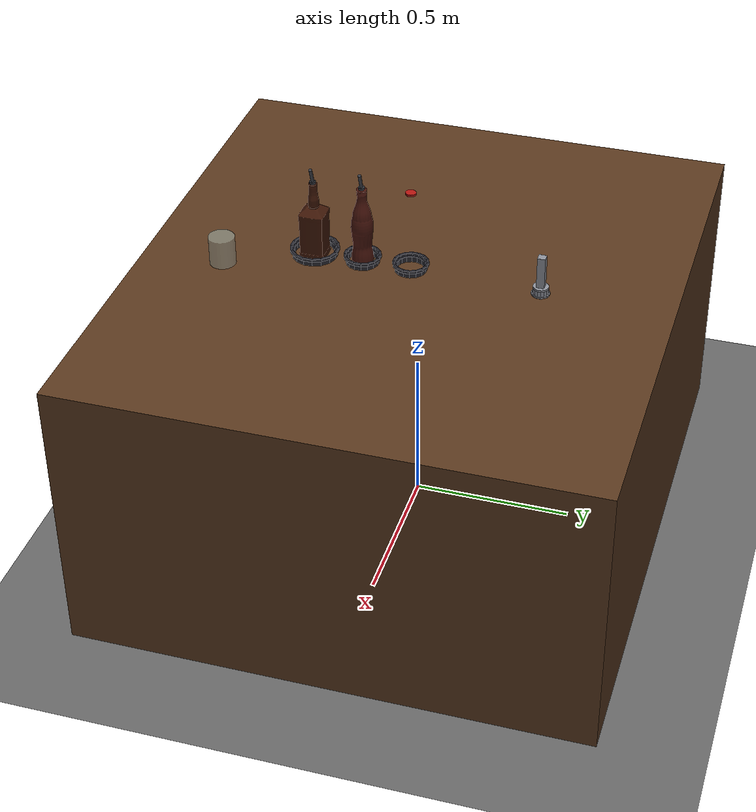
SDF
<sdf version="1.9">
 <world name="bar_world">
  <physics name="1ms" type="ignored">
   <max_step_size>0.001</max_step_size>
   <real_time_factor>1.0</real_time_factor>
   <dart><collision_detector>bullet</collision_detector></dart>
  </physics>
  <plugin filename="gz-sim-physics-system" name="gz::sim::systems::Physics"/>
  <plugin filename="gz-sim-user-commands-system" name="gz::sim::systems::UserCommands"/>
  <plugin filename="gz-sim-scene-broadcaster-system" name="gz::sim::systems::SceneBroadcaster"/>
  <plugin filename="gz-sim-sensors-system" name="gz::sim::systems::Sensors">
   <render_engine>ogre2</render_engine>
  </plugin>
  <plugin filename="gz-sim-contact-system" name="gz::sim::systems::Contact"/>
  <light type="directional" name="sun">
   <pose>0 0 10 0 0 0</pose>
   <diffuse>0.8 0.8 0.8 1</diffuse>
   <specular>0.2 0.2 0.2 1</specular>
   <attenuation>
    <range>1000</range>
    <constant>0.9</constant>
    <linear>0.01</linear>
    <quadratic>0.001</quadratic>
   </attenuation>
   <direction>-0.5 0.1 -0.9</direction>
  </light>
  <model name="ground_plane">
   <static>true</static>
   <link name="link">
    <collision name="collision">
     <geometry><plane><normal>0 0 1</normal><size>100 100</size></plane></geometry>
    </collision>
    <visual name="visual">
     <geometry><plane><normal>0 0 1</normal><size>100 100</size></plane></geometry>
     <material><ambient>0.3 0.3 0.3 1</ambient><diffuse>0.4 0.4 0.4 1</diffuse></material>
    </visual>
   </link>
  </model>
  <include><uri>model://bar_counter</uri><name>bar_counter</name><pose>0.08 0 0.9 0 0 0</pose></include>
  <include>
   <uri>model://jack_daniels_bottle</uri>
   <name>jack_daniels_bottle</name>
   <plugin filename="gz-sim-label-system" name="gz::sim::systems::Label"><label>1</label></plugin>
   <pose>0.08 -0.30 0.9 0 0 0</pose>
  </include>
  <include>
   <uri>model://cola_bottle</uri>
   <name>cola_bottle</name>
   <plugin filename="gz-sim-label-system" name="gz::sim::systems::Label"><label>2</label></plugin>
   <pose>0.08 -0.15 0.9 0 0 0</pose>
  </include>
  <include><uri>model://whiskey_stand</uri><name>whiskey_stand</name><pose>0.08 -0.30 0.9 0 0 0</pose></include>
  <include><uri>model://cola_stand</uri><name>cola_stand</name><pose>0.08 -0.15 0.9 0 0 0</pose></include>
  <include><uri>model://beer_stand</uri><name>beer_stand</name><pose>0.08 0.0 0.9 0 0 0</pose></include>
  <include><uri>model://beer_cap</uri><name>beer_cap</name><pose>0.08 0.0 1.1581 0 0 0</pose></include>
  <include>
   <uri>model://serving_glass</uri>
   <name>serving_glass</name>
   <plugin filename="gz-sim-label-system" name="gz::sim::systems::Label"><label>10</label></plugin>
   <pose>0.20 -0.55 0.9 0 0 0</pose>
  </include>
  <include>
   <uri>model://opener_holster</uri>
   <name>opener_holster</name>
   <pose>0.10 0.40 0.9 0 0 0</pose>
  </include>
  <include><uri>model://bottle_opener</uri><name>bottle_opener</name><pose>0.10 0.40 0.9 0 0 0</pose></include>
  <model name="oak_d_stand">
   <static>true</static>
   <pose>0.75 0 1.35 0 0.493051 3.141593</pose>
   <link name="link">
    <sensor name="stand_depth" type="depth_camera">
     <always_on>true</always_on>
     <update_rate>15</update_rate>
     <topic>/bartender/stand_camera/depth</topic>
     <ignition_frame_id>stand_camera_optical_frame</ignition_frame_id>
     <camera>
      <camera_info_topic>/bartender/stand_camera/camera_info</camera_info_topic>
      <horizontal_fov>1.2566</horizontal_fov>
      <image><width>640</width><height>400</height><format>R_FLOAT32</format></image>
      <clip><near>0.2</near><far>5.0</far></clip>
      <noise><type>gaussian</type><mean>0.0</mean><stddev>0.004</stddev></noise>
     </camera>
    </sensor>
    <sensor name="stand_rgb" type="camera">
     <always_on>true</always_on>
     <update_rate>15</update_rate>
     <topic>/bartender/stand_camera/rgb</topic>
     <ignition_frame_id>stand_camera_optical_frame</ignition_frame_id>
     <camera>
      <horizontal_fov>1.2566</horizontal_fov>
      <image><width>640</width><height>400</height><format>R8G8B8</format></image>
      <clip><near>0.2</near><far>5.0</far></clip>
     </camera>
    </sensor>
    <sensor name="bartender_stand_camera_segmentation" type="segmentation">
     <always_on>true</always_on>
     <update_rate>15</update_rate>
     <topic>/bartender/stand_camera/segmentation</topic>
     <camera>
      <segmentation_type>semantic</segmentation_type>
      <horizontal_fov>1.2566</horizontal_fov>
      <image><width>640</width><height>400</height></image>
      <clip><near>0.2</near><far>5.0</far></clip>
     </camera>
    </sensor>
   </link>
  </model>
  <model name="overhead_camera">
   <static>true</static>
   <pose>-0.05 -0.30 2.0 0 1.5708 0</pose>
   <link name="link">
    <sensor name="overhead_rgb" type="camera">
     <always_on>true</always_on>
     <update_rate>15</update_rate>
     <topic>/bartender/overhead_camera/image_raw</topic>
     <camera>
      <horizontal_fov>1.2566</horizontal_fov>
      <image><width>320</width><height>240</height><format>R8G8B8</format></image>
      <clip><near>0.2</near><far>3.0</far></clip>
     </camera>
    </sensor>
    <sensor name="bartender_overhead_camera_segmentation" type="segmentation">
     <always_on>true</always_on>
     <update_rate>15</update_rate>
     <topic>/bartender/overhead_camera/segmentation</topic>
     <camera>
      <segmentation_type>semantic</segmentation_type>
      <horizontal_fov>1.2566</horizontal_fov>
      <image><width>320</width><height>240</height></image>
      <clip><near>0.2</near><far>3.0</far></clip>
     </camera>
    </sensor>
   </link>
  </model>
 </world>
</sdf>

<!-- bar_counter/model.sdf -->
<sdf version="1.9">
  <model name="bar_counter">
    <static>true</static>
    <link name="counter_link">
      <visual name="counter_visual">
        <pose>0 0 -0.45 0 0 0</pose>
        <geometry>
          <box>
            <size>1.76 1.6 0.9</size>
          </box>
        </geometry>
        <material>
          <ambient>0.25 0.15 0.08 1</ambient>
          <diffuse>0.35 0.22 0.12 1</diffuse>
          <specular>0.2 0.2 0.2 1</specular>
        </material>
      </visual>

      <collision name="counter_collision">
        <pose>0 0 -0.45 0 0 0</pose>
        <geometry>
          <box>
            <size>1.76 1.6 0.9</size>
          </box>
        </geometry>
        <surface>
          <friction>
            <ode>
              <mu>0.8</mu>
              <mu2>0.8</mu2>
            </ode>
          </friction>
        </surface>
      </collision>
    </link>
  </model>
</sdf>

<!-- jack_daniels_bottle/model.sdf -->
<sdf version="1.9">
  <model name="jack_daniels_bottle">
    <!-- Link origin sits at the center of the bottle's base, so placing the
         model's pose z at table height puts the bottle exactly on the surface. -->
    <link name="bottle_link">
      <inertial>
        <pose>0 0 0.1225 0 0 0</pose>
        <mass>1.35</mass>
        <inertia>
          <ixx>0.007256</ixx>
          <iyy>0.007256</iyy>
          <izz>0.001006</izz>
          <ixy>0</ixy>
          <ixz>0</ixz>
          <iyz>0</iyz>
        </inertia>
      </inertial>

      <visual name="bottle_visual">
        <!-- source mesh is Y-up (Blender OBJ export); rotate +90 deg about X
             so the bottle's height axis becomes Z-up as SDF expects. -->
        <pose>0 0 0 1.570796 0 0</pose>
        <geometry>
          <mesh>
            <uri>meshes/bottle.obj</uri>
          </mesh>
        </geometry>
        <material>
          <ambient>0.05 0.02 0.01 1</ambient>
          <diffuse>0.25 0.09 0.03 1</diffuse>
          <specular>0.4 0.4 0.4 1</specular>
          <emissive>0 0 0 1</emissive>
        </material>
      </visual>

      <collision name="bottle_body_collision">
        <pose>0 0 0.0750 0 0 0</pose>
        <geometry>
          <box>
            <size>0.0772 0.0772 0.150</size>
          </box>
        </geometry>
        <surface>
          <friction>
            <ode>
              <mu>0.9</mu>
              <mu2>0.9</mu2>
            </ode>
          </friction>
        </surface>
      </collision>

      <collision name="bottle_shoulder_collision">
        <pose>0 0 0.1625 0 0 0</pose>
        <geometry>
          <cylinder>
            <radius>0.0250</radius>
            <length>0.025</length>
          </cylinder>
        </geometry>
        <surface>
          <friction>
            <ode>
              <mu>0.9</mu>
              <mu2>0.9</mu2>
            </ode>
          </friction>
        </surface>
      </collision>

      <collision name="bottle_neck_collision">
        <pose>0 0 0.2100 0 0 0</pose>
        <geometry>
          <cylinder>
            <radius>0.0165</radius>
            <length>0.070</length>
          </cylinder>
        </geometry>
        <surface>
          <friction>
            <ode>
              <mu>0.9</mu>
              <mu2>0.9</mu2>
            </ode>
          </friction>
        </surface>
      </collision>

      <collision name="bottle_collar_collision">
        <pose>0 0 0.2360 0 0 0</pose>
        <geometry>
          <cylinder>
            <radius>0.0210</radius>
            <length>0.008</length>
          </cylinder>
        </geometry>
        <surface>
          <friction>
            <ode>
              <mu>0.9</mu>
              <mu2>0.9</mu2>
            </ode>
          </friction>
        </surface>
      </collision>

      <visual name="bottle_pourer_body_visual">
        <pose>0 0 0.2410 0 0 0</pose>
        <geometry><cylinder><radius>0.0095</radius><length>0.022</length></cylinder></geometry>
        <material>
          <ambient>0.05 0.05 0.06 1</ambient>
          <diffuse>0.22 0.23 0.26 1</diffuse>
          <specular>0.7 0.7 0.7 1</specular>
        </material>
      </visual>
      <visual name="bottle_pourer_spout_visual">
        <pose>0.0086 0 0.2755 0 0.349066 0</pose>
        <geometry><cylinder><radius>0.005</radius><length>0.050</length></cylinder></geometry>
        <material>
          <ambient>0.05 0.05 0.06 1</ambient>
          <diffuse>0.22 0.23 0.26 1</diffuse>
          <specular>0.7 0.7 0.7 1</specular>
        </material>
      </visual>

      <collision name="bottle_pourer_body_collision">
        <pose>0 0 0.2410 0 0 0</pose>
        <geometry><cylinder><radius>0.0095</radius><length>0.022</length></cylinder></geometry>
        <surface><friction><ode><mu>0.9</mu><mu2>0.9</mu2></ode></friction></surface>
      </collision>
      <collision name="bottle_pourer_spout_collision">
        <pose>0.0086 0 0.2755 0 0.349066 0</pose>
        <geometry><cylinder><radius>0.005</radius><length>0.050</length></cylinder></geometry>
        <surface><friction><ode><mu>0.9</mu><mu2>0.9</mu2></ode></friction></surface>
      </collision>
    </link>
  </model>
</sdf>

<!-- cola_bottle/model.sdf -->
<sdf version="1.9">
  <model name="cola_bottle">
    <!-- Link origin sits at the center of the bottle's base, same convention
         as jack_daniels_bottle, so placing the model's pose z at table height
         puts the bottle exactly on the surface. -->
    <link name="cola_link">
      <inertial>
        <pose>0 0 0.11 0 0 0</pose>
        <mass>1.05</mass>
        <inertia>
          <ixx>0.005765</ixx>
          <iyy>0.005765</iyy>
          <izz>0.000593</izz>
          <ixy>0</ixy>
          <ixz>0</ixz>
          <iyz>0</iyz>
        </inertia>
      </inertial>

      <velocity_decay>
        <linear>0.05</linear>
        <angular>0.30</angular>
      </velocity_decay>

      <visual name="cola_visual">
        <pose>0 0 0 1.570796 0 0</pose>
        <geometry>
          <mesh>
            <uri>meshes/cola_bottle.obj</uri>
            <scale>0.065074 0.065074 0.065074</scale>
          </mesh>
        </geometry>
        <material>
          <ambient>0.06 0.02 0.01 1</ambient>
          <diffuse>0.28 0.08 0.05 1</diffuse>
          <specular>0.5 0.5 0.5 1</specular>
          <emissive>0 0 0 1</emissive>
        </material>
      </visual>

      <collision name="cola_base_collision">
        <pose>0 0 0.0200 0 0 0</pose>
        <geometry>
          <cylinder>
            <radius>0.0333</radius>
            <length>0.040</length>
          </cylinder>
        </geometry>
        <surface>
          <friction>
            <ode>
              <mu>0.9</mu>
              <mu2>0.9</mu2>
            </ode>
          </friction>
        </surface>
      </collision>

      <collision name="cola_waist_collision">
        <pose>0 0 0.0600 0 0 0</pose>
        <geometry>
          <cylinder>
            <radius>0.0298</radius>
            <length>0.040</length>
          </cylinder>
        </geometry>
        <surface>
          <friction>
            <ode>
              <mu>0.9</mu>
              <mu2>0.9</mu2>
            </ode>
          </friction>
        </surface>
      </collision>

      <collision name="cola_bulge_collision">
        <pose>0 0 0.1150 0 0 0</pose>
        <geometry>
          <cylinder>
            <radius>0.0336</radius>
            <length>0.070</length>
          </cylinder>
        </geometry>
        <surface>
          <friction>
            <ode>
              <mu>0.9</mu>
              <mu2>0.9</mu2>
            </ode>
          </friction>
        </surface>
      </collision>

      <collision name="cola_shoulder_collision">
        <pose>0 0 0.1725 0 0 0</pose>
        <geometry>
          <cylinder>
            <radius>0.0250</radius>
            <length>0.045</length>
          </cylinder>
        </geometry>
        <surface>
          <friction>
            <ode>
              <mu>0.9</mu>
              <mu2>0.9</mu2>
            </ode>
          </friction>
        </surface>
      </collision>

      <collision name="cola_neck_collision">
        <pose>0 0 0.2225 0 0 0</pose>
        <geometry>
          <cylinder>
            <radius>0.0165</radius>
            <length>0.055</length>
          </cylinder>
        </geometry>
        <surface>
          <friction>
            <ode>
              <mu>0.9</mu>
              <mu2>0.9</mu2>
            </ode>
          </friction>
        </surface>
      </collision>

      <collision name="cola_collar_collision">
        <pose>0 0 0.2410 0 0 0</pose>
        <geometry>
          <cylinder>
            <radius>0.0210</radius>
            <length>0.008</length>
          </cylinder>
        </geometry>
        <surface>
          <friction>
            <ode>
              <mu>0.9</mu>
              <mu2>0.9</mu2>
            </ode>
          </friction>
        </surface>
      </collision>

      <visual name="cola_pourer_body_visual">
        <pose>0 0 0.2460 0 0 0</pose>
        <geometry><cylinder><radius>0.0095</radius><length>0.022</length></cylinder></geometry>
        <material>
          <ambient>0.05 0.05 0.06 1</ambient>
          <diffuse>0.22 0.23 0.26 1</diffuse>
          <specular>0.7 0.7 0.7 1</specular>
        </material>
      </visual>
      <visual name="cola_pourer_spout_visual">
        <pose>0.0086 0 0.2805 0 0.349066 0</pose>
        <geometry><cylinder><radius>0.005</radius><length>0.050</length></cylinder></geometry>
        <material>
          <ambient>0.05 0.05 0.06 1</ambient>
          <diffuse>0.22 0.23 0.26 1</diffuse>
          <specular>0.7 0.7 0.7 1</specular>
        </material>
      </visual>

      <collision name="cola_pourer_body_collision">
        <pose>0 0 0.2460 0 0 0</pose>
        <geometry><cylinder><radius>0.0095</radius><length>0.022</length></cylinder></geometry>
        <surface><friction><ode><mu>0.9</mu><mu2>0.9</mu2></ode></friction></surface>
      </collision>
      <collision name="cola_pourer_spout_collision">
        <pose>0.0086 0 0.2805 0 0.349066 0</pose>
        <geometry><cylinder><radius>0.005</radius><length>0.050</length></cylinder></geometry>
        <surface><friction><ode><mu>0.9</mu><mu2>0.9</mu2></ode></friction></surface>
      </collision>
    </link>
  </model>
</sdf>

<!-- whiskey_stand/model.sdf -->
<!-- GENERATED by ros2_ws/src/bartender_gazebo/scripts/make_bottle_stands.py.
     Edit that script and re-run it; edits here are overwritten. -->
<sdf version="1.9">
  <model name="whiskey_stand">
    <static>true</static>
    <link name="stand_link">
      <visual name="wall_0">
        <pose>0.064000 0.000000 0.009000 0 0 0.000000</pose>
        <geometry><box><size>0.008000 0.027052 0.018000</size></box></geometry>
        <material>
          <ambient>0.10 0.10 0.12 1</ambient>
          <diffuse>0.16 0.16 0.19 1</diffuse>
          <specular>0.05 0.05 0.05 1</specular>
        </material>
      </visual>
      <collision name="wall_collision_0">
        <pose>0.064000 0.000000 0.009000 0 0 0.000000</pose>
        <geometry><box><size>0.008000 0.027052 0.018000</size></box></geometry>
        <surface>
          <friction><ode>
            <mu>1.2</mu>
            <mu2>1.2</mu2>
          </ode></friction>
        </surface>
      </collision>
      <visual name="wall_1">
        <pose>0.059128 0.024492 0.009000 0 0 0.392699</pose>
        <geometry><box><size>0.008000 0.027052 0.018000</size></box></geometry>
        <material>
          <ambient>0.10 0.10 0.12 1</ambient>
          <diffuse>0.16 0.16 0.19 1</diffuse>
          <specular>0.05 0.05 0.05 1</specular>
        </material>
      </visual>
      <collision name="wall_collision_1">
        <pose>0.059128 0.024492 0.009000 0 0 0.392699</pose>
        <geometry><box><size>0.008000 0.027052 0.018000</size></box></geometry>
        <surface>
          <friction><ode>
            <mu>1.2</mu>
            <mu2>1.2</mu2>
          </ode></friction>
        </surface>
      </collision>
      <visual name="wall_2">
        <pose>0.045255 0.045255 0.009000 0 0 0.785398</pose>
        <geometry><box><size>0.008000 0.027052 0.018000</size></box></geometry>
        <material>
          <ambient>0.10 0.10 0.12 1</ambient>
          <diffuse>0.16 0.16 0.19 1</diffuse>
          <specular>0.05 0.05 0.05 1</specular>
        </material>
      </visual>
      <collision name="wall_collision_2">
        <pose>0.045255 0.045255 0.009000 0 0 0.785398</pose>
        <geometry><box><size>0.008000 0.027052 0.018000</size></box></geometry>
        <surface>
          <friction><ode>
            <mu>1.2</mu>
            <mu2>1.2</mu2>
          </ode></friction>
        </surface>
      </collision>
      <visual name="wall_3">
        <pose>0.024492 0.059128 0.009000 0 0 1.178097</pose>
        <geometry><box><size>0.008000 0.027052 0.018000</size></box></geometry>
        <material>
          <ambient>0.10 0.10 0.12 1</ambient>
          <diffuse>0.16 0.16 0.19 1</diffuse>
          <specular>0.05 0.05 0.05 1</specular>
        </material>
      </visual>
      <collision name="wall_collision_3">
        <pose>0.024492 0.059128 0.009000 0 0 1.178097</pose>
        <geometry><box><size>0.008000 0.027052 0.018000</size></box></geometry>
        <surface>
          <friction><ode>
            <mu>1.2</mu>
            <mu2>1.2</mu2>
          </ode></friction>
        </surface>
      </collision>
      <visual name="wall_4">
        <pose>0.000000 0.064000 0.009000 0 0 1.570796</pose>
        <geometry><box><size>0.008000 0.027052 0.018000</size></box></geometry>
        <material>
          <ambient>0.10 0.10 0.12 1</ambient>
          <diffuse>0.16 0.16 0.19 1</diffuse>
          <specular>0.05 0.05 0.05 1</specular>
        </material>
      </visual>
      <collision name="wall_collision_4">
        <pose>0.000000 0.064000 0.009000 0 0 1.570796</pose>
        <geometry><box><size>0.008000 0.027052 0.018000</size></box></geometry>
        <surface>
          <friction><ode>
            <mu>1.2</mu>
            <mu2>1.2</mu2>
          </ode></friction>
        </surface>
      </collision>
      <visual name="wall_5">
        <pose>-0.024492 0.059128 0.009000 0 0 1.963495</pose>
        <geometry><box><size>0.008000 0.027052 0.018000</size></box></geometry>
        <material>
          <ambient>0.10 0.10 0.12 1</ambient>
          <diffuse>0.16 0.16 0.19 1</diffuse>
          <specular>0.05 0.05 0.05 1</specular>
        </material>
      </visual>
      <collision name="wall_collision_5">
        <pose>-0.024492 0.059128 0.009000 0 0 1.963495</pose>
        <geometry><box><size>0.008000 0.027052 0.018000</size></box></geometry>
        <surface>
          <friction><ode>
            <mu>1.2</mu>
            <mu2>1.2</mu2>
          </ode></friction>
        </surface>
      </collision>
      <visual name="wall_6">
        <pose>-0.045255 0.045255 0.009000 0 0 2.356194</pose>
        <geometry><box><size>0.008000 0.027052 0.018000</size></box></geometry>
        <material>
          <ambient>0.10 0.10 0.12 1</ambient>
          <diffuse>0.16 0.16 0.19 1</diffuse>
          <specular>0.05 0.05 0.05 1</specular>
        </material>
      </visual>
      <collision name="wall_collision_6">
        <pose>-0.045255 0.045255 0.009000 0 0 2.356194</pose>
        <geometry><box><size>0.008000 0.027052 0.018000</size></box></geometry>
        <surface>
          <friction><ode>
            <mu>1.2</mu>
            <mu2>1.2</mu2>
          </ode></friction>
        </surface>
      </collision>
      <visual name="wall_7">
        <pose>-0.059128 0.024492 0.009000 0 0 2.748894</pose>
        <geometry><box><size>0.008000 0.027052 0.018000</size></box></geometry>
        <material>
          <ambient>0.10 0.10 0.12 1</ambient>
          <diffuse>0.16 0.16 0.19 1</diffuse>
          <specular>0.05 0.05 0.05 1</specular>
        </material>
      </visual>
      <collision name="wall_collision_7">
        <pose>-0.059128 0.024492 0.009000 0 0 2.748894</pose>
        <geometry><box><size>0.008000 0.027052 0.018000</size></box></geometry>
        <surface>
          <friction><ode>
            <mu>1.2</mu>
            <mu2>1.2</mu2>
          </ode></friction>
        </surface>
      </collision>
      <visual name="wall_8">
        <pose>-0.064000 0.000000 0.009000 0 0 3.141593</pose>
        <geometry><box><size>0.008000 0.027052 0.018000</size></box></geometry>
        <material>
          <ambient>0.10 0.10 0.12 1</ambient>
          <diffuse>0.16 0.16 0.19 1</diffuse>
          <specular>0.05 0.05 0.05 1</specular>
        </material>
      </visual>
      <collision name="wall_collision_8">
        <pose>-0.064000 0.000000 0.009000 0 0 3.141593</pose>
        <geometry><box><size>0.008000 0.027052 0.018000</size></box></geometry>
        <surface>
          <friction><ode>
            <mu>1.2</mu>
            <mu2>1.2</mu2>
          </ode></friction>
        </surface>
      </collision>
      <visual name="wall_9">
        <pose>-0.059128 -0.024492 0.009000 0 0 3.534292</pose>
        <geometry><box><size>0.008000 0.027052 0.018000</size></box></geometry>
        <material>
          <ambient>0.10 0.10 0.12 1</ambient>
          <diffuse>0.16 0.16 0.19 1</diffuse>
          <specular>0.05 0.05 0.05 1</specular>
        </material>
      </visual>
      <collision name="wall_collision_9">
        <pose>-0.059128 -0.024492 0.009000 0 0 3.534292</pose>
        <geometry><box><size>0.008000 0.027052 0.018000</size></box></geometry>
        <surface>
          <friction><ode>
            <mu>1.2</mu>
            <mu2>1.2</mu2>
          </ode></friction>
        </surface>
      </collision>
      <visual name="wall_10">
        <pose>-0.045255 -0.045255 0.009000 0 0 3.926991</pose>
        <geometry><box><size>0.008000 0.027052 0.018000</size></box></geometry>
        <material>
          <ambient>0.10 0.10 0.12 1</ambient>
          <diffuse>0.16 0.16 0.19 1</diffuse>
          <specular>0.05 0.05 0.05 1</specular>
        </material>
      </visual>
      <collision name="wall_collision_10">
        <pose>-0.045255 -0.045255 0.009000 0 0 3.926991</pose>
        <geometry><box><size>0.008000 0.027052 0.018000</size></box></geometry>
        <surface>
          <friction><ode>
            <mu>1.2</mu>
            <mu2>1.2</mu2>
          </ode></friction>
        </surface>
      </collision>
      <visual name="wall_11">
        <pose>-0.024492 -0.059128 0.009000 0 0 4.319690</pose>
        <geometry><box><size>0.008000 0.027052 0.018000</size></box></geometry>
        <material>
          <ambient>0.10 0.10 0.12 1</ambient>
          <diffuse>0.16 0.16 0.19 1</diffuse>
          <specular>0.05 0.05 0.05 1</specular>
        </material>
      </visual>
      <collision name="wall_collision_11">
        <pose>-0.024492 -0.059128 0.009000 0 0 4.319690</pose>
        <geometry><box><size>0.008000 0.027052 0.018000</size></box></geometry>
        <surface>
          <friction><ode>
            <mu>1.2</mu>
            <mu2>1.2</mu2>
          </ode></friction>
        </surface>
      </collision>
      <visual name="wall_12">
        <pose>-0.000000 -0.064000 0.009000 0 0 4.712389</pose>
        <geometry><box><size>0.008000 0.027052 0.018000</size></box></geometry>
        <material>
          <ambient>0.10 0.10 0.12 1</ambient>
          <diffuse>0.16 0.16 0.19 1</diffuse>
          <specular>0.05 0.05 0.05 1</specular>
        </material>
      </visual>
      <collision name="wall_collision_12">
        <pose>-0.000000 -0.064000 0.009000 0 0 4.712389</pose>
        <geometry><box><size>0.008000 0.027052 0.018000</size></box></geometry>
        <surface>
          <friction><ode>
            <mu>1.2</mu>
            <mu2>1.2</mu2>
          </ode></friction>
        </surface>
      </collision>
      <visual name="wall_13">
        <pose>0.024492 -0.059128 0.009000 0 0 5.105088</pose>
        <geometry><box><size>0.008000 0.027052 0.018000</size></box></geometry>
        <material>
          <ambient>0.10 0.10 0.12 1</ambient>
          <diffuse>0.16 0.16 0.19 1</diffuse>
          <specular>0.05 0.05 0.05 1</specular>
        </material>
      </visual>
      <collision name="wall_collision_13">
        <pose>0.024492 -0.059128 0.009000 0 0 5.105088</pose>
        <geometry><box><size>0.008000 0.027052 0.018000</size></box></geometry>
        <surface>
          <friction><ode>
            <mu>1.2</mu>
            <mu2>1.2</mu2>
          </ode></friction>
        </surface>
      </collision>
      <visual name="wall_14">
        <pose>0.045255 -0.045255 0.009000 0 0 5.497787</pose>
        <geometry><box><size>0.008000 0.027052 0.018000</size></box></geometry>
        <material>
          <ambient>0.10 0.10 0.12 1</ambient>
          <diffuse>0.16 0.16 0.19 1</diffuse>
          <specular>0.05 0.05 0.05 1</specular>
        </material>
      </visual>
      <collision name="wall_collision_14">
        <pose>0.045255 -0.045255 0.009000 0 0 5.497787</pose>
        <geometry><box><size>0.008000 0.027052 0.018000</size></box></geometry>
        <surface>
          <friction><ode>
            <mu>1.2</mu>
            <mu2>1.2</mu2>
          </ode></friction>
        </surface>
      </collision>
      <visual name="wall_15">
        <pose>0.059128 -0.024492 0.009000 0 0 5.890486</pose>
        <geometry><box><size>0.008000 0.027052 0.018000</size></box></geometry>
        <material>
          <ambient>0.10 0.10 0.12 1</ambient>
          <diffuse>0.16 0.16 0.19 1</diffuse>
          <specular>0.05 0.05 0.05 1</specular>
        </material>
      </visual>
      <collision name="wall_collision_15">
        <pose>0.059128 -0.024492 0.009000 0 0 5.890486</pose>
        <geometry><box><size>0.008000 0.027052 0.018000</size></box></geometry>
        <surface>
          <friction><ode>
            <mu>1.2</mu>
            <mu2>1.2</mu2>
          </ode></friction>
        </surface>
      </collision>
      <visual name="wall_16">
        <pose>0.070000 0.000000 0.022000 0 0 0.000000</pose>
        <geometry><box><size>0.008000 0.029439 0.008000</size></box></geometry>
        <material>
          <ambient>0.10 0.10 0.12 1</ambient>
          <diffuse>0.16 0.16 0.19 1</diffuse>
          <specular>0.05 0.05 0.05 1</specular>
        </material>
      </visual>
      <collision name="wall_collision_16">
        <pose>0.070000 0.000000 0.022000 0 0 0.000000</pose>
        <geometry><box><size>0.008000 0.029439 0.008000</size></box></geometry>
        <surface>
          <friction><ode>
            <mu>1.2</mu>
            <mu2>1.2</mu2>
          </ode></friction>
        </surface>
      </collision>
      <visual name="wall_17">
        <pose>0.064672 0.026788 0.022000 0 0 0.392699</pose>
        <geometry><box><size>0.008000 0.029439 0.008000</size></box></geometry>
        <material>
          <ambient>0.10 0.10 0.12 1</ambient>
          <diffuse>0.16 0.16 0.19 1</diffuse>
          <specular>0.05 0.05 0.05 1</specular>
        </material>
      </visual>
      <collision name="wall_collision_17">
        <pose>0.064672 0.026788 0.022000 0 0 0.392699</pose>
        <geometry><box><size>0.008000 0.029439 0.008000</size></box></geometry>
        <surface>
          <friction><ode>
            <mu>1.2</mu>
            <mu2>1.2</mu2>
          </ode></friction>
        </surface>
      </collision>
      <visual name="wall_18">
        <pose>0.049497 0.049497 0.022000 0 0 0.785398</pose>
        <geometry><box><size>0.008000 0.029439 0.008000</size></box></geometry>
        <material>
          <ambient>0.10 0.10 0.12 1</ambient>
          <diffuse>0.16 0.16 0.19 1</diffuse>
          <specular>0.05 0.05 0.05 1</specular>
        </material>
      </visual>
      <collision name="wall_collision_18">
        <pose>0.049497 0.049497 0.022000 0 0 0.785398</pose>
        <geometry><box><size>0.008000 0.029439 0.008000</size></box></geometry>
        <surface>
          <friction><ode>
            <mu>1.2</mu>
            <mu2>1.2</mu2>
          </ode></friction>
        </surface>
      </collision>
      <visual name="wall_19">
        <pose>0.026788 0.064672 0.022000 0 0 1.178097</pose>
        <geometry><box><size>0.008000 0.029439 0.008000</size></box></geometry>
        <material>
          <ambient>0.10 0.10 0.12 1</ambient>
          <diffuse>0.16 0.16 0.19 1</diffuse>
          <specular>0.05 0.05 0.05 1</specular>
        </material>
      </visual>
      <collision name="wall_collision_19">
        <pose>0.026788 0.064672 0.022000 0 0 1.178097</pose>
        <geometry><box><size>0.008000 0.029439 0.008000</size></box></geometry>
        <surface>
          <friction><ode>
            <mu>1.2</mu>
            <mu2>1.2</mu2>
          </ode></friction>
        </surface>
      </collision>
      <visual name="wall_20">
        <pose>0.000000 0.070000 0.022000 0 0 1.570796</pose>
        <geometry><box><size>0.008000 0.029439 0.008000</size></box></geometry>
        <material>
          <ambient>0.10 0.10 0.12 1</ambient>
          <diffuse>0.16 0.16 0.19 1</diffuse>
          <specular>0.05 0.05 0.05 1</specular>
        </material>
      </visual>
      <collision name="wall_collision_20">
        <pose>0.000000 0.070000 0.022000 0 0 1.570796</pose>
        <geometry><box><size>0.008000 0.029439 0.008000</size></box></geometry>
        <surface>
          <friction><ode>
            <mu>1.2</mu>
            <mu2>1.2</mu2>
          </ode></friction>
        </surface>
      </collision>
      <visual name="wall_21">
        <pose>-0.026788 0.064672 0.022000 0 0 1.963495</pose>
        <geometry><box><size>0.008000 0.029439 0.008000</size></box></geometry>
        <material>
          <ambient>0.10 0.10 0.12 1</ambient>
          <diffuse>0.16 0.16 0.19 1</diffuse>
          <specular>0.05 0.05 0.05 1</specular>
        </material>
      </visual>
      <collision name="wall_collision_21">
        <pose>-0.026788 0.064672 0.022000 0 0 1.963495</pose>
        <geometry><box><size>0.008000 0.029439 0.008000</size></box></geometry>
        <surface>
          <friction><ode>
            <mu>1.2</mu>
            <mu2>1.2</mu2>
          </ode></friction>
        </surface>
      </collision>
      <visual name="wall_22">
        <pose>-0.049497 0.049497 0.022000 0 0 2.356194</pose>
        <geometry><box><size>0.008000 0.029439 0.008000</size></box></geometry>
        <material>
          <ambient>0.10 0.10 0.12 1</ambient>
          <diffuse>0.16 0.16 0.19 1</diffuse>
          <specular>0.05 0.05 0.05 1</specular>
        </material>
      </visual>
      <collision name="wall_collision_22">
        <pose>-0.049497 0.049497 0.022000 0 0 2.356194</pose>
        <geometry><box><size>0.008000 0.029439 0.008000</size></box></geometry>
        <surface>
          <friction><ode>
            <mu>1.2</mu>
            <mu2>1.2</mu2>
          </ode></friction>
        </surface>
      </collision>
      <visual name="wall_23">
        <pose>-0.064672 0.026788 0.022000 0 0 2.748894</pose>
        <geometry><box><size>0.008000 0.029439 0.008000</size></box></geometry>
        <material>
          <ambient>0.10 0.10 0.12 1</ambient>
          <diffuse>0.16 0.16 0.19 1</diffuse>
          <specular>0.05 0.05 0.05 1</specular>
        </material>
      </visual>
      <collision name="wall_collision_23">
        <pose>-0.064672 0.026788 0.022000 0 0 2.748894</pose>
        <geometry><box><size>0.008000 0.029439 0.008000</size></box></geometry>
        <surface>
          <friction><ode>
            <mu>1.2</mu>
            <mu2>1.2</mu2>
          </ode></friction>
        </surface>
      </collision>
      <visual name="wall_24">
        <pose>-0.070000 0.000000 0.022000 0 0 3.141593</pose>
        <geometry><box><size>0.008000 0.029439 0.008000</size></box></geometry>
        <material>
          <ambient>0.10 0.10 0.12 1</ambient>
          <diffuse>0.16 0.16 0.19 1</diffuse>
          <specular>0.05 0.05 0.05 1</specular>
        </material>
      </visual>
      <collision name="wall_collision_24">
        <pose>-0.070000 0.000000 0.022000 0 0 3.141593</pose>
        <geometry><box><size>0.008000 0.029439 0.008000</size></box></geometry>
        <surface>
          <friction><ode>
            <mu>1.2</mu>
            <mu2>1.2</mu2>
          </ode></friction>
        </surface>
      </collision>
      <visual name="wall_25">
        <pose>-0.064672 -0.026788 0.022000 0 0 3.534292</pose>
        <geometry><box><size>0.008000 0.029439 0.008000</size></box></geometry>
        <material>
          <ambient>0.10 0.10 0.12 1</ambient>
          <diffuse>0.16 0.16 0.19 1</diffuse>
          <specular>0.05 0.05 0.05 1</specular>
        </material>
      </visual>
      <collision name="wall_collision_25">
        <pose>-0.064672 -0.026788 0.022000 0 0 3.534292</pose>
        <geometry><box><size>0.008000 0.029439 0.008000</size></box></geometry>
        <surface>
          <friction><ode>
            <mu>1.2</mu>
            <mu2>1.2</mu2>
          </ode></friction>
        </surface>
      </collision>
      <visual name="wall_26">
        <pose>-0.049497 -0.049497 0.022000 0 0 3.926991</pose>
        <geometry><box><size>0.008000 0.029439 0.008000</size></box></geometry>
        <material>
          <ambient>0.10 0.10 0.12 1</ambient>
          <diffuse>0.16 0.16 0.19 1</diffuse>
          <specular>0.05 0.05 0.05 1</specular>
        </material>
      </visual>
      <collision name="wall_collision_26">
        <pose>-0.049497 -0.049497 0.022000 0 0 3.926991</pose>
        <geometry><box><size>0.008000 0.029439 0.008000</size></box></geometry>
        <surface>
          <friction><ode>
            <mu>1.2</mu>
            <mu2>1.2</mu2>
          </ode></friction>
        </surface>
      </collision>
      <visual name="wall_27">
        <pose>-0.026788 -0.064672 0.022000 0 0 4.319690</pose>
        <geometry><box><size>0.008000 0.029439 0.008000</size></box></geometry>
        <material>
          <ambient>0.10 0.10 0.12 1</ambient>
          <diffuse>0.16 0.16 0.19 1</diffuse>
          <specular>0.05 0.05 0.05 1</specular>
        </material>
      </visual>
      <collision name="wall_collision_27">
        <pose>-0.026788 -0.064672 0.022000 0 0 4.319690</pose>
        <geometry><box><size>0.008000 0.029439 0.008000</size></box></geometry>
        <surface>
          <friction><ode>
            <mu>1.2</mu>
            <mu2>1.2</mu2>
          </ode></friction>
        </surface>
      </collision>
      <visual name="wall_28">
        <pose>-0.000000 -0.070000 0.022000 0 0 4.712389</pose>
        <geometry><box><size>0.008000 0.029439 0.008000</size></box></geometry>
        <material>
          <ambient>0.10 0.10 0.12 1</ambient>
          <diffuse>0.16 0.16 0.19 1</diffuse>
          <specular>0.05 0.05 0.05 1</specular>
        </material>
      </visual>
      <collision name="wall_collision_28">
        <pose>-0.000000 -0.070000 0.022000 0 0 4.712389</pose>
        <geometry><box><size>0.008000 0.029439 0.008000</size></box></geometry>
        <surface>
          <friction><ode>
            <mu>1.2</mu>
            <mu2>1.2</mu2>
          </ode></friction>
        </surface>
      </collision>
      <visual name="wall_29">
        <pose>0.026788 -0.064672 0.022000 0 0 5.105088</pose>
        <geometry><box><size>0.008000 0.029439 0.008000</size></box></geometry>
        <material>
          <ambient>0.10 0.10 0.12 1</ambient>
          <diffuse>0.16 0.16 0.19 1</diffuse>
          <specular>0.05 0.05 0.05 1</specular>
        </material>
      </visual>
      <collision name="wall_collision_29">
        <pose>0.026788 -0.064672 0.022000 0 0 5.105088</pose>
        <geometry><box><size>0.008000 0.029439 0.008000</size></box></geometry>
        <surface>
          <friction><ode>
            <mu>1.2</mu>
            <mu2>1.2</mu2>
          </ode></friction>
        </surface>
      </collision>
      <visual name="wall_30">
        <pose>0.049497 -0.049497 0.022000 0 0 5.497787</pose>
        <geometry><box><size>0.008000 0.029439 0.008000</size></box></geometry>
        <material>
          <ambient>0.10 0.10 0.12 1</ambient>
          <diffuse>0.16 0.16 0.19 1</diffuse>
          <specular>0.05 0.05 0.05 1</specular>
        </material>
      </visual>
      <collision name="wall_collision_30">
        <pose>0.049497 -0.049497 0.022000 0 0 5.497787</pose>
        <geometry><box><size>0.008000 0.029439 0.008000</size></box></geometry>
        <surface>
          <friction><ode>
            <mu>1.2</mu>
            <mu2>1.2</mu2>
          </ode></friction>
        </surface>
      </collision>
      <visual name="wall_31">
        <pose>0.064672 -0.026788 0.022000 0 0 5.890486</pose>
        <geometry><box><size>0.008000 0.029439 0.008000</size></box></geometry>
        <material>
          <ambient>0.10 0.10 0.12 1</ambient>
          <diffuse>0.16 0.16 0.19 1</diffuse>
          <specular>0.05 0.05 0.05 1</specular>
        </material>
      </visual>
      <collision name="wall_collision_31">
        <pose>0.064672 -0.026788 0.022000 0 0 5.890486</pose>
        <geometry><box><size>0.008000 0.029439 0.008000</size></box></geometry>
        <surface>
          <friction><ode>
            <mu>1.2</mu>
            <mu2>1.2</mu2>
          </ode></friction>
        </surface>
      </collision>
    </link>
  </model>
</sdf>

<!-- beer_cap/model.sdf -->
<!-- GENERATED by ros2_ws/src/bartender_gazebo/scripts/make_beer_and_opener.py.
     Edit that script and re-run it; edits here are overwritten. -->
<sdf version="1.9">
  <model name="beer_cap">
    <link name="cap_link">
      <inertial>
        <pose>0 0 0.003250 0 0 0</pose>
        <mass>0.0022</mass>
        <inertia>
          <ixx>0.000000150</ixx>
          <iyy>0.000000150</iyy>
          <izz>0.000000285</izz>
          <ixy>0</ixy><ixz>0</ixz><iyz>0</iyz>
        </inertia>
      </inertial>

      <visual name="cap_visual">
        <pose>0 0 0.003250 0 0 0</pose>
        <geometry><cylinder><radius>0.016100</radius>
          <length>0.006500</length></cylinder></geometry>
        <material>
          <ambient>0.20 0.02 0.02 1</ambient>
          <diffuse>0.70 0.08 0.06 1</diffuse>
          <specular>0.8 0.8 0.8 1</specular>
        </material>
      </visual>

      <collision name="cap_collision">
        <pose>0 0 0.003250 0 0 0</pose>
        <geometry><cylinder><radius>0.016100</radius>
          <length>0.006500</length></cylinder></geometry>
        <surface><friction><ode><mu>0.9</mu><mu2>0.9</mu2></ode></friction></surface>
      </collision>
    </link>
  </model>
</sdf>

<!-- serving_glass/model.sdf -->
<sdf version="1.9">
  <model name="serving_glass">
    <!-- Link origin is the center of the glass's base. -->
    <link name="glass_link">
      <inertial>
        <pose>0 0 0.045 0 0 0</pose>
        <mass>0.3</mass>
        <inertia>
          <ixx>0.0003225</ixx>
          <iyy>0.0003225</iyy>
          <izz>0.00024</izz>
          <ixy>0</ixy>
          <ixz>0</ixz>
          <iyz>0</iyz>
        </inertia>
      </inertial>

      <visual name="glass_visual">
        <pose>0 0 0.045 0 0 0</pose>
        <geometry>
          <cylinder>
            <radius>0.04</radius>
            <length>0.09</length>
          </cylinder>
        </geometry>
        <material>
          <ambient>0.6 0.7 0.7 0.4</ambient>
          <diffuse>0.7 0.85 0.85 0.4</diffuse>
          <specular>0.9 0.9 0.9 0.6</specular>
        </material>
      </visual>

      <collision name="glass_collision">
        <pose>0 0 0.045 0 0 0</pose>
        <geometry>
          <cylinder>
            <radius>0.04</radius>
            <length>0.09</length>
          </cylinder>
        </geometry>
        <surface>
          <friction>
            <ode>
              <mu>0.7</mu>
              <mu2>0.7</mu2>
            </ode>
          </friction>
        </surface>
      </collision>
    </link>
  </model>
</sdf>

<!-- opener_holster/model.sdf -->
<!-- GENERATED by ros2_ws/src/bartender_gazebo/scripts/make_beer_and_opener.py.
     Edit that script and re-run it; edits here are overwritten. -->
<sdf version="1.9">
  <model name="opener_holster">
    <static>true</static>
    <link name="holster_link">

      <collision name="post_collision">
        <pose>0 0 0.005000 0 0 0</pose>
        <geometry><cylinder><radius>0.016100</radius>
          <length>0.010000</length></cylinder></geometry>
        <surface><friction><ode><mu>1.2</mu><mu2>1.2</mu2></ode></friction></surface>
      </collision>

      <collision name="post_lead_collision">
        <pose>0 0 0.012000 0 0 0</pose>
        <geometry><cylinder><radius>0.013500</radius>
          <length>0.004000</length></cylinder></geometry>
        <surface><friction><ode><mu>1.2</mu><mu2>1.2</mu2></ode></friction></surface>
      </collision>
      <visual name="post">
        <pose>0 0 0.005000 0 0 0</pose>
        <geometry><cylinder><radius>0.016100</radius>
          <length>0.010000</length></cylinder></geometry>
        <material>
          <ambient>0.10 0.10 0.12 1</ambient>
          <diffuse>0.16 0.16 0.19 1</diffuse>
        </material>
      </visual>
      <visual name="post_lead">
        <pose>0 0 0.012000 0 0 0</pose>
        <geometry><cylinder><radius>0.013500</radius>
          <length>0.004000</length></cylinder></geometry>
        <material>
          <ambient>0.10 0.10 0.12 1</ambient>
          <diffuse>0.16 0.16 0.19 1</diffuse>
        </material>
      </visual>
    </link>
  </model>
</sdf>
